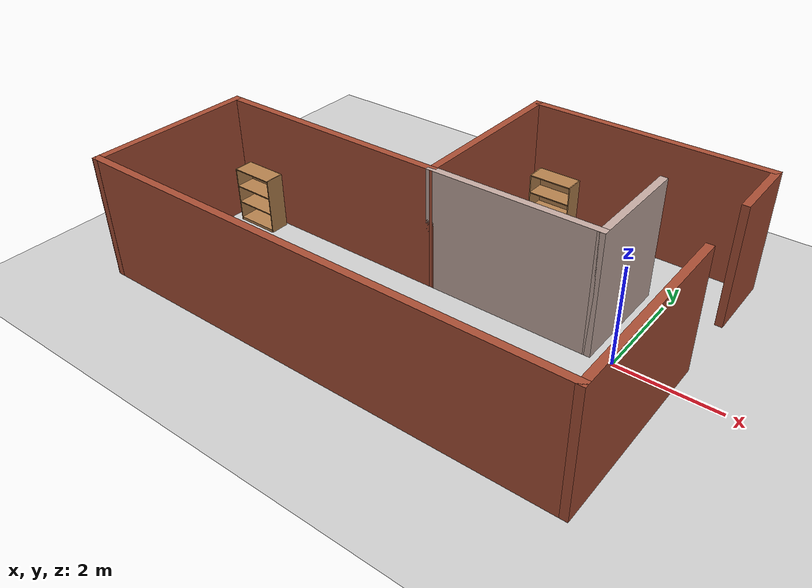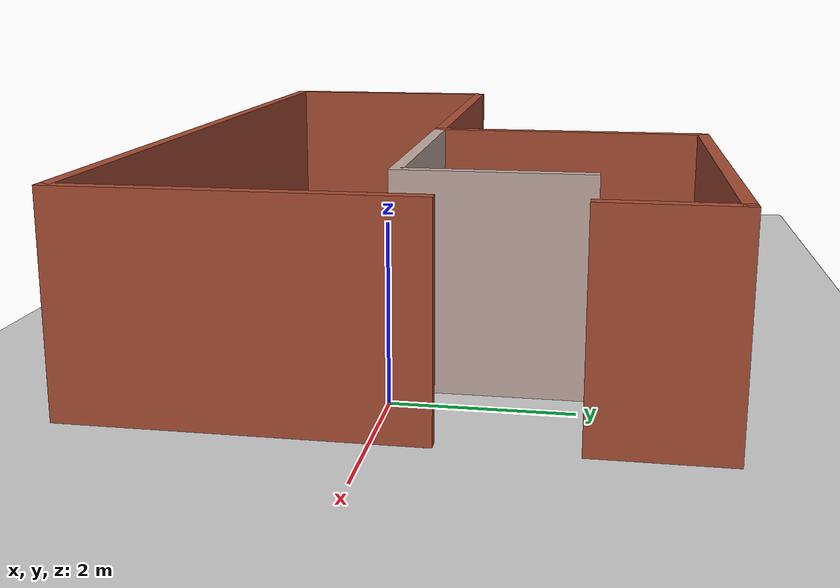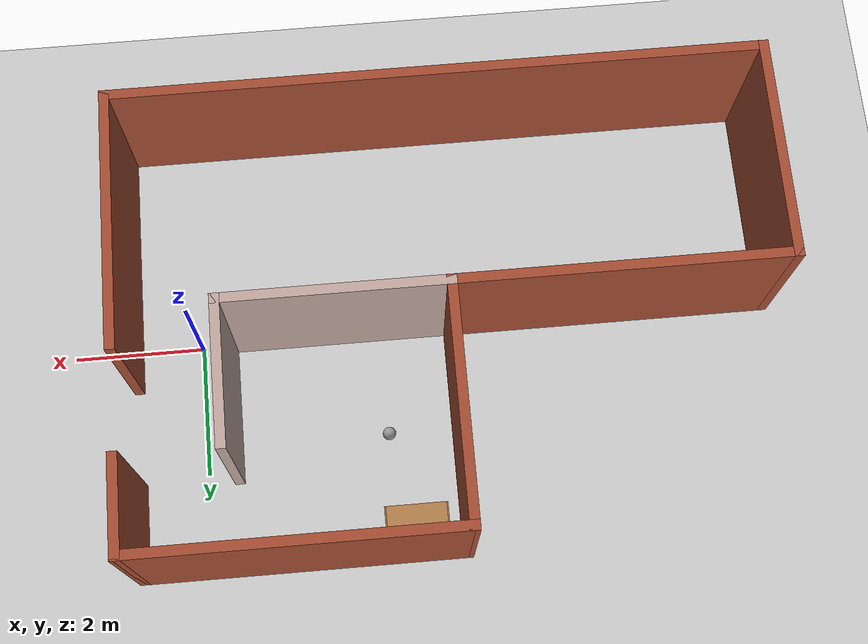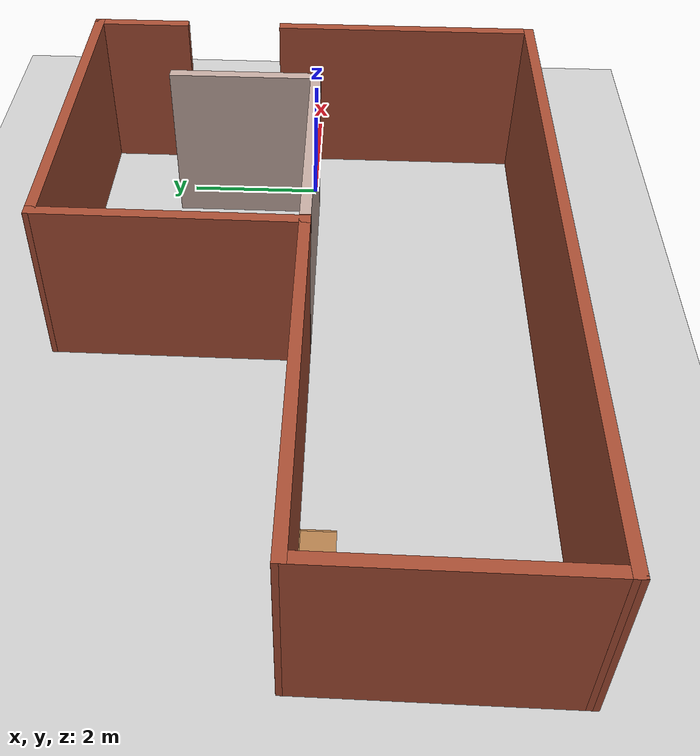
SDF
<sdf version="1.6">
 <world name="default">
  <model name="ground_plane">
   <static>1</static>
   <link name="link">
    <collision name="collision">
     <geometry><plane><normal>0 0 1</normal><size>100 100</size></plane></geometry>
     <surface>
      <contact><collide_bitmask>65535</collide_bitmask></contact>
      <friction><ode><mu>100</mu><mu2>50</mu2></ode></friction>
     </surface>
    </collision>
    <visual name="visual">
     <cast_shadows>0</cast_shadows>
     <geometry><plane><normal>0 0 1</normal><size>100 100</size></plane></geometry>
     <material>
      <script><uri>file://media/materials/scripts/gazebo.material</uri><name>Gazebo/Grey</name></script>
     </material>
    </visual>
   </link>
  </model>
  <model name="mybuilding">
   <pose>-3.90514 0.1099 0 0 -0 0</pose>
   <link name="Wall_17">
    <collision name="Wall_17_Collision">
     <geometry><box><size>5 0.15 2.5</size></box></geometry>
     <pose>0 0 1.25 0 -0 0</pose>
    </collision>
    <visual name="Wall_17_Visual">
     <pose>0 0 1.25 0 -0 0</pose>
     <geometry><box><size>5 0.15 2.5</size></box></geometry>
     <material>
      <script><uri>file://media/materials/scripts/gazebo.material</uri><name>Gazebo/Bricks</name></script>
      <ambient>1 1 1 1</ambient>
     </material>
     <meta><layer>0</layer></meta>
    </visual>
    <pose>2.50014 3.4001 0 0 -0 0</pose>
   </link>
   <link name="Wall_18">
    <collision name="Wall_18_Collision">
     <geometry><box><size>1.5 0.15 2.5</size></box></geometry>
     <pose>0 0 1.25 0 -0 0</pose>
    </collision>
    <visual name="Wall_18_Visual">
     <pose>0 0 1.25 0 -0 0</pose>
     <geometry><box><size>1.5 0.15 2.5</size></box></geometry>
     <material>
      <script><uri>file://media/materials/scripts/gazebo.material</uri><name>Gazebo/Bricks</name></script>
      <ambient>1 1 1 1</ambient>
     </material>
     <meta><layer>0</layer></meta>
    </visual>
    <pose>4.92514 2.7251 0 0 0 -1.5708</pose>
   </link>
   <link name="Wall_20">
    <collision name="Wall_20_Collision">
     <geometry><box><size>3.53042 0.15 2.5</size></box></geometry>
     <pose>0 0 1.25 0 -0 0</pose>
    </collision>
    <visual name="Wall_20_Visual">
     <pose>0 0 1.25 0 -0 0</pose>
     <geometry><box><size>3.53042 0.15 2.5</size></box></geometry>
     <material>
      <script><uri>file://media/materials/scripts/gazebo.material</uri><name>Gazebo/Grey</name></script>
      <ambient>0.760784 0.662745 0.627451 1</ambient>
     </material>
     <meta><layer>0</layer></meta>
    </visual>
    <pose>1.75065 -0.107588 0 0 -0 0</pose>
   </link>
   <link name="Wall_21">
    <collision name="Wall_21_Collision">
     <geometry><box><size>2.25 0.15 2.5</size></box></geometry>
     <pose>0 0 1.25 0 -0 0</pose>
    </collision>
    <visual name="Wall_21_Visual">
     <pose>0 0 1.25 0 -0 0</pose>
     <geometry><box><size>2.25 0.15 2.5</size></box></geometry>
     <material>
      <script><uri>file://media/materials/scripts/gazebo.material</uri><name>Gazebo/Grey</name></script>
      <ambient>0.760784 0.662745 0.627451 1</ambient>
     </material>
     <meta><layer>0</layer></meta>
    </visual>
    <pose>3.44086 0.942412 0 0 -0 1.5708</pose>
   </link>
   <link name="Wall_23">
    <collision name="Wall_23_Collision">
     <geometry><box><size>3.65772 0.15 2.5</size></box></geometry>
     <pose>0 0 1.25 0 -0 0</pose>
    </collision>
    <visual name="Wall_23_Visual">
     <pose>0 0 1.25 0 -0 0</pose>
     <geometry><box><size>3.65772 0.15 2.5</size></box></geometry>
     <material>
      <script><uri>file://media/materials/scripts/gazebo.material</uri><name>Gazebo/Bricks</name></script>
      <ambient>1 1 1 1</ambient>
     </material>
     <meta><layer>0</layer></meta>
    </visual>
    <pose>0.06779 1.64626 0 0 0 -1.57499</pose>
   </link>
   <link name="Wall_25">
    <collision name="Wall_25_Collision">
     <geometry><box><size>3.44282 0.15 2.5</size></box></geometry>
     <pose>0 0 1.25 0 -0 0</pose>
    </collision>
    <visual name="Wall_25_Visual">
     <pose>0 0 1.25 0 -0 0</pose>
     <geometry><box><size>3.44282 0.15 2.5</size></box></geometry>
     <material>
      <script><uri>file://media/materials/scripts/gazebo.material</uri><name>Gazebo/Bricks</name></script>
      <ambient>1 1 1 1</ambient>
     </material>
     <meta><layer>0</layer></meta>
    </visual>
    <pose>-4.91884 -1.75374 0 0 -0 1.56714</pose>
   </link>
   <link name="Wall_26">
    <collision name="Wall_26_Collision">
     <geometry><box><size>5.13847 0.15 2.5</size></box></geometry>
     <pose>0 0 1.25 0 -0 0</pose>
    </collision>
    <visual name="Wall_26_Visual">
     <pose>0 0 1.25 0 -0 0</pose>
     <geometry><box><size>5.13847 0.15 2.5</size></box></geometry>
     <material>
      <script><uri>file://media/materials/scripts/gazebo.material</uri><name>Gazebo/Bricks</name></script>
      <ambient>1 1 1 1</ambient>
     </material>
     <meta><layer>0</layer></meta>
    </visual>
    <pose>-2.41858 -0.107588 0 0 -0 0</pose>
   </link>
   <link name="Wall_5">
    <collision name="Wall_5_Collision">
     <geometry><box><size>10 0.15 2.5</size></box></geometry>
     <pose>0 0 1.25 0 -0 0</pose>
    </collision>
    <visual name="Wall_5_Visual">
     <pose>0 0 1.25 0 -0 0</pose>
     <geometry><box><size>10 0.15 2.5</size></box></geometry>
     <material>
      <script><uri>file://media/materials/scripts/gazebo.material</uri><name>Gazebo/Bricks</name></script>
      <ambient>1 1 1 1</ambient>
     </material>
     <meta><layer>0</layer></meta>
    </visual>
    <pose>0.000138 -3.3999 0 0 -0 0</pose>
   </link>
   <link name="Wall_6">
    <collision name="Wall_6_Collision">
     <geometry><box><size>4 0.15 2.5</size></box></geometry>
     <pose>0 0 1.25 0 -0 0</pose>
    </collision>
    <visual name="Wall_6_Visual">
     <pose>0 0 1.25 0 -0 0</pose>
     <geometry><box><size>4 0.15 2.5</size></box></geometry>
     <material>
      <script><uri>file://media/materials/scripts/gazebo.material</uri><name>Gazebo/Bricks</name></script>
      <ambient>1 1 1 1</ambient>
     </material>
     <meta><layer>0</layer></meta>
    </visual>
    <pose>4.92514 -1.4749 0 0 -0 1.5708</pose>
   </link>
   <static>1</static>
  </model>
  <model name="bookshelf">
   <static>1</static>
   <link name="link">
    <inertial><mass>1</mass></inertial>
    <collision name="back">
     <pose>0 0.005 0.6 0 -0 0</pose>
     <geometry><box><size>0.9 0.01 1.2</size></box></geometry>
    </collision>
    <visual name="visual1">
     <pose>0 0.005 0.6 0 -0 0</pose>
     <geometry><box><size>0.9 0.01 1.2</size></box></geometry>
     <material>
      <script><uri>file://media/materials/scripts/gazebo.material</uri><name>Gazebo/Wood</name></script>
     </material>
    </visual>
    <collision name="left_side">
     <pose>0.45 -0.195 0.6 0 -0 0</pose>
     <geometry><box><size>0.02 0.4 1.2</size></box></geometry>
    </collision>
    <visual name="visual2">
     <pose>0.45 -0.195 0.6 0 -0 0</pose>
     <geometry><box><size>0.02 0.4 1.2</size></box></geometry>
     <material>
      <script><uri>file://media/materials/scripts/gazebo.material</uri><name>Gazebo/Wood</name></script>
     </material>
    </visual>
    <collision name="right_side">
     <pose>-0.45 -0.195 0.6 0 -0 0</pose>
     <geometry><box><size>0.02 0.4 1.2</size></box></geometry>
    </collision>
    <visual name="visual3">
     <pose>-0.45 -0.195 0.6 0 -0 0</pose>
     <geometry><box><size>0.02 0.4 1.2</size></box></geometry>
     <material>
      <script><uri>file://media/materials/scripts/gazebo.material</uri><name>Gazebo/Wood</name></script>
     </material>
    </visual>
    <collision name="bottom">
     <pose>0 -0.195 0.03 0 -0 0</pose>
     <geometry><box><size>0.88 0.4 0.06</size></box></geometry>
    </collision>
    <visual name="visual4">
     <pose>0 -0.195 0.03 0 -0 0</pose>
     <geometry><box><size>0.88 0.4 0.06</size></box></geometry>
     <material>
      <script><uri>file://media/materials/scripts/gazebo.material</uri><name>Gazebo/Wood</name></script>
     </material>
    </visual>
    <collision name="top">
     <pose>0 -0.195 1.19 0 -0 0</pose>
     <geometry><box><size>0.88 0.4 0.02</size></box></geometry>
    </collision>
    <visual name="visual5">
     <pose>0 -0.195 1.19 0 -0 0</pose>
     <geometry><box><size>0.88 0.4 0.02</size></box></geometry>
     <material>
      <script><uri>file://media/materials/scripts/gazebo.material</uri><name>Gazebo/Wood</name></script>
     </material>
    </visual>
    <collision name="low_shelf">
     <pose>0 -0.195 0.43 0 -0 0</pose>
     <geometry><box><size>0.88 0.4 0.02</size></box></geometry>
    </collision>
    <visual name="visual6">
     <pose>0 -0.195 0.43 0 -0 0</pose>
     <geometry><box><size>0.88 0.4 0.02</size></box></geometry>
     <material>
      <script><uri>file://media/materials/scripts/gazebo.material</uri><name>Gazebo/Wood</name></script>
     </material>
    </visual>
    <collision name="high_shelf">
     <pose>0 -0.195 0.8 0 -0 0</pose>
     <geometry><box><size>0.88 0.4 0.02</size></box></geometry>
    </collision>
    <visual name="visual7">
     <pose>0 -0.195 0.8 0 -0 0</pose>
     <geometry><box><size>0.88 0.4 0.02</size></box></geometry>
     <material>
      <script><uri>file://media/materials/scripts/gazebo.material</uri><name>Gazebo/Wood</name></script>
     </material>
    </visual>
   </link>
   <pose>-3.08655 3.31796 0 0 -0 0</pose>
  </model>
  <model name="bookshelf_0">
   <static>1</static>
   <link name="link">
    <inertial><mass>1</mass></inertial>
    <collision name="back">
     <pose>0 0.005 0.6 0 -0 0</pose>
     <geometry><box><size>0.9 0.01 1.2</size></box></geometry>
    </collision>
    <visual name="visual1">
     <pose>0 0.005 0.6 0 -0 0</pose>
     <geometry><box><size>0.9 0.01 1.2</size></box></geometry>
     <material>
      <script><uri>file://media/materials/scripts/gazebo.material</uri><name>Gazebo/Wood</name></script>
     </material>
    </visual>
    <collision name="left_side">
     <pose>0.45 -0.195 0.6 0 -0 0</pose>
     <geometry><box><size>0.02 0.4 1.2</size></box></geometry>
    </collision>
    <visual name="visual2">
     <pose>0.45 -0.195 0.6 0 -0 0</pose>
     <geometry><box><size>0.02 0.4 1.2</size></box></geometry>
     <material>
      <script><uri>file://media/materials/scripts/gazebo.material</uri><name>Gazebo/Wood</name></script>
     </material>
    </visual>
    <collision name="right_side">
     <pose>-0.45 -0.195 0.6 0 -0 0</pose>
     <geometry><box><size>0.02 0.4 1.2</size></box></geometry>
    </collision>
    <visual name="visual3">
     <pose>-0.45 -0.195 0.6 0 -0 0</pose>
     <geometry><box><size>0.02 0.4 1.2</size></box></geometry>
     <material>
      <script><uri>file://media/materials/scripts/gazebo.material</uri><name>Gazebo/Wood</name></script>
     </material>
    </visual>
    <collision name="bottom">
     <pose>0 -0.195 0.03 0 -0 0</pose>
     <geometry><box><size>0.88 0.4 0.06</size></box></geometry>
    </collision>
    <visual name="visual4">
     <pose>0 -0.195 0.03 0 -0 0</pose>
     <geometry><box><size>0.88 0.4 0.06</size></box></geometry>
     <material>
      <script><uri>file://media/materials/scripts/gazebo.material</uri><name>Gazebo/Wood</name></script>
     </material>
    </visual>
    <collision name="top">
     <pose>0 -0.195 1.19 0 -0 0</pose>
     <geometry><box><size>0.88 0.4 0.02</size></box></geometry>
    </collision>
    <visual name="visual5">
     <pose>0 -0.195 1.19 0 -0 0</pose>
     <geometry><box><size>0.88 0.4 0.02</size></box></geometry>
     <material>
      <script><uri>file://media/materials/scripts/gazebo.material</uri><name>Gazebo/Wood</name></script>
     </material>
    </visual>
    <collision name="low_shelf">
     <pose>0 -0.195 0.43 0 -0 0</pose>
     <geometry><box><size>0.88 0.4 0.02</size></box></geometry>
    </collision>
    <visual name="visual6">
     <pose>0 -0.195 0.43 0 -0 0</pose>
     <geometry><box><size>0.88 0.4 0.02</size></box></geometry>
     <material>
      <script><uri>file://media/materials/scripts/gazebo.material</uri><name>Gazebo/Wood</name></script>
     </material>
    </visual>
    <collision name="high_shelf">
     <pose>0 -0.195 0.8 0 -0 0</pose>
     <geometry><box><size>0.88 0.4 0.02</size></box></geometry>
    </collision>
    <visual name="visual7">
     <pose>0 -0.195 0.8 0 -0 0</pose>
     <geometry><box><size>0.88 0.4 0.02</size></box></geometry>
     <material>
      <script><uri>file://media/materials/scripts/gazebo.material</uri><name>Gazebo/Wood</name></script>
     </material>
    </visual>
   </link>
   <pose>-8.05287 -0.128584 0 0 -0 0</pose>
  </model>
  <model name="my_ball">
   <link name="link_0">
    <inertial>
     <mass>1</mass>
     <inertia><ixx>0.1</ixx><ixy>0</ixy><ixz>0</ixz><iyy>0.1</iyy><iyz>0</iyz><izz>0.1</izz></inertia>
    </inertial>
    <visual name="visual">
     <geometry><sphere><radius>0.1</radius></sphere></geometry>
     <material>
      <lighting>1</lighting>
      <script><uri>file://media/materials/scripts/gazebo.material</uri><name>Gazebo/Grey</name></script>
      <shader type="pixel"><normal_map>__default__</normal_map></shader>
      <ambient>1 1 1 1</ambient>
      <diffuse>1 1 1 1</diffuse>
      <specular>1 1 1 1</specular>
      <emissive>1 1 1 1</emissive>
     </material>
    </visual>
    <collision name="collision">
     <geometry><sphere><radius>0.1</radius></sphere></geometry>
     <surface>
      <friction>
       <ode><mu>1</mu><mu2>1</mu2><fdir1>0 0 0</fdir1><slip1>0</slip1><slip2>0</slip2></ode>
       <torsional>
        <coefficient>1</coefficient>
        <patch_radius>0</patch_radius>
        <surface_radius>0</surface_radius>
        <use_patch_radius>1</use_patch_radius>
        <ode><slip>0</slip></ode>
       </torsional>
      </friction>
      <bounce><restitution_coefficient>0</restitution_coefficient><threshold>1e+06</threshold></bounce>
      <contact>
       <collide_without_contact>0</collide_without_contact>
       <collide_without_contact_bitmask>1</collide_without_contact_bitmask>
       <collide_bitmask>1</collide_bitmask>
       <ode>
        <soft_cfm>0</soft_cfm>
        <soft_erp>0.2</soft_erp>
        <kp>1e+13</kp>
        <kd>1</kd>
        <max_vel>0.01</max_vel>
        <min_depth>0</min_depth>
       </ode>
       <bullet>
        <split_impulse>1</split_impulse>
        <split_impulse_penetration_threshold>-0.01</split_impulse_penetration_threshold>
        <soft_cfm>0</soft_cfm>
        <soft_erp>0.2</soft_erp>
        <kp>1e+13</kp>
        <kd>1</kd>
       </bullet>
      </contact>
     </surface>
    </collision>
   </link>
   <static>0</static>
   <pose>-2.79303 1.60236 0.1 0 -0 0</pose>
  </model>
 </world>
</sdf>
